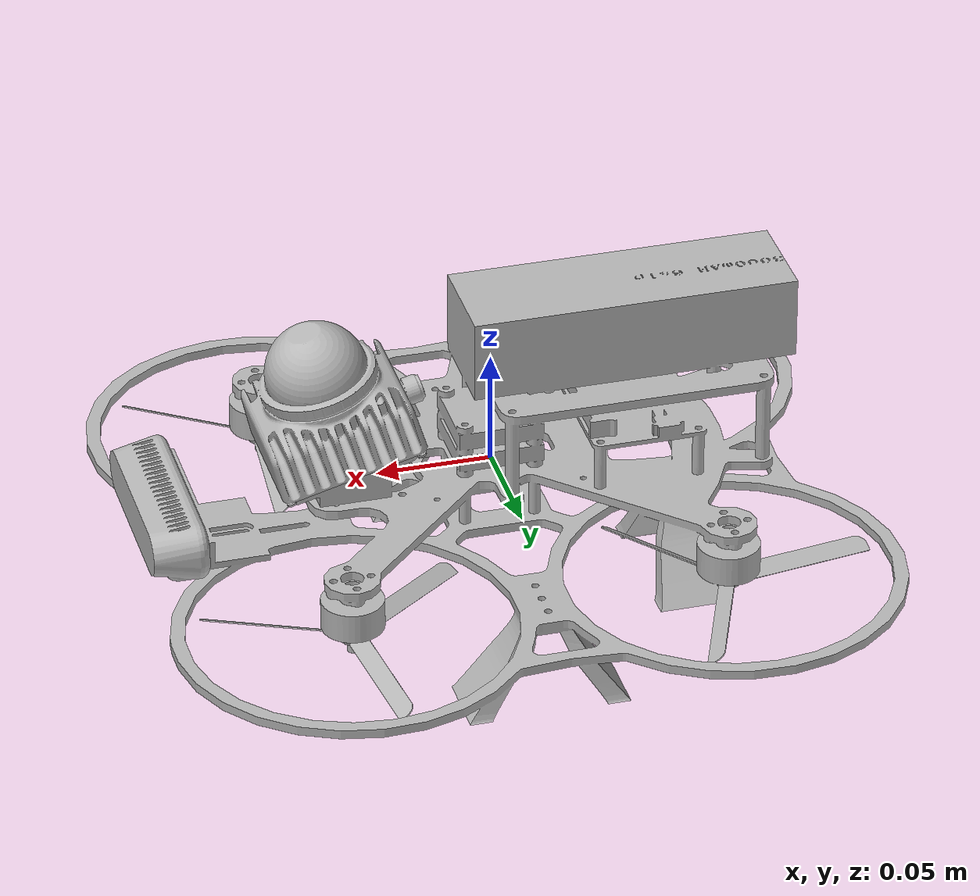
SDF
<sdf version='1.7'>
  <model name='uav'>
    <link name='base_link'>
      <inertial>
        <pose>0.00854 -4e-06 0.015696 0 -0 0</pose>
        <mass>0.961089</mass>
        <inertia>
          <ixx>0.0014967</ixx>
          <ixy>-2.95523e-07</ixy>
          <ixz>2.17071e-05</ixz>
          <iyy>0.00522903</iyy>
          <iyz>-4.47148e-08</iyz>
          <izz>0.00639738</izz>
        </inertia>
      </inertial>
      <collision name='base_link_collision'>
        <pose>0 0 0 0 -0 0</pose>
        <geometry>
          <mesh>
            <scale>1 1 1</scale>
            <uri>model://uav/meshes/base_link.STL</uri>
          </mesh>
        </geometry>
      </collision>
      <collision name='base_link_fixed_joint_lump__camera_link_collision_1'>
        <pose>0.15532 0.001716 -0.001374 0 1.5708 0</pose>
        <geometry>
          <mesh>
            <scale>1 1 1</scale>
            <uri>model://uav/meshes/camera_link.STL</uri>
          </mesh>
        </geometry>
      </collision>
      <collision name='base_link_fixed_joint_lump__lidar_link_collision_2'>
        <pose>0.080904 0 0.074681 0 0.2618 0</pose>
        <geometry>
          <mesh>
            <scale>1 1 1</scale>
            <uri>model://uav/meshes/lidar_link.STL</uri>
          </mesh>
        </geometry>
      </collision>
      <visual name='base_link_visual'>
        <pose>0 0 0 0 -0 0</pose>
        <geometry>
          <mesh>
            <scale>1 1 1</scale>
            <uri>model://uav/meshes/base_link.STL</uri>
          </mesh>
        </geometry>
      </visual>
      <visual name='base_link_fixed_joint_lump__camera_link_visual_1'>
        <pose>0.15532 0.001716 -0.001374 0 1.5708 0</pose>
        <geometry>
          <mesh>
            <scale>1 1 1</scale>
            <uri>model://uav/meshes/camera_link.STL</uri>
          </mesh>
        </geometry>
      </visual>
      <visual name='base_link_fixed_joint_lump__lidar_link_visual_2'>
        <pose>0.080904 0 0.074681 0 0.2618 0</pose>
        <geometry>
          <mesh>
            <scale>1 1 1</scale>
            <uri>model://uav/meshes/lidar_link.STL</uri>
          </mesh>
        </geometry>
      </visual>
    </link>
    <joint name='propeller_1' type='revolute'>
      <pose relative_to='base_link'>0.081317 0.081317 -0.0264 0 -0 0</pose>
      <parent>base_link</parent>
      <child>propeller_1_link</child>
      <axis>
        <xyz>0 0 -1</xyz>
        <limit>
          <lower>-1e+16</lower>
          <upper>1e+16</upper>
        </limit>
        <dynamics>
          <spring_reference>0</spring_reference>
          <spring_stiffness>0</spring_stiffness>
        </dynamics>
      </axis>
    </joint>
    <link name='propeller_1_link'>
      <pose relative_to='propeller_1'>0 0 0 0 -0 0</pose>
      <inertial>
        <pose>-0 -0 0.003491 0 -0 0</pose>
        <mass>0.0012983</mass>
        <inertia>
          <ixx>5.4247e-07</ixx>
          <ixy>-3.2114e-14</ixy>
          <ixz>8.3771e-14</ixz>
          <iyy>5.4246e-07</iyy>
          <iyz>5.8084e-15</iyz>
          <izz>1.0787e-06</izz>
        </inertia>
      </inertial>
      <collision name='propeller_1_link_collision'>
        <pose>0 0 0 0 -0 0</pose>
        <geometry>
          <mesh>
            <scale>1 1 1</scale>
            <uri>model://uav/meshes/propeller_1_link.STL</uri>
          </mesh>
        </geometry>
      </collision>
      <visual name='propeller_1_link_visual'>
        <pose>0 0 0 0 -0 0</pose>
        <geometry>
          <mesh>
            <scale>1 1 1</scale>
            <uri>model://uav/meshes/propeller_1_link.STL</uri>
          </mesh>
        </geometry>
      </visual>
    </link>
    <joint name='propeller_2' type='revolute'>
      <pose relative_to='base_link'>0.081317 -0.081317 -0.0264 0 -0 0</pose>
      <parent>base_link</parent>
      <child>propeller_2_link</child>
      <axis>
        <xyz>0 0 -1</xyz>
        <limit>
          <lower>-1e+16</lower>
          <upper>1e+16</upper>
        </limit>
        <dynamics>
          <spring_reference>0</spring_reference>
          <spring_stiffness>0</spring_stiffness>
        </dynamics>
      </axis>
    </joint>
    <link name='propeller_2_link'>
      <pose relative_to='propeller_2'>0 0 0 0 -0 0</pose>
      <inertial>
        <pose>-0 -0 0.003491 0 -0 0</pose>
        <mass>0.0012983</mass>
        <inertia>
          <ixx>5.4247e-07</ixx>
          <ixy>-1.5213e-13</ixy>
          <ixz>6.0754e-14</ixz>
          <iyy>5.4246e-07</iyy>
          <iyz>2.55e-14</iyz>
          <izz>1.0787e-06</izz>
        </inertia>
      </inertial>
      <collision name='propeller_2_link_collision'>
        <pose>0 0 0 0 -0 0</pose>
        <geometry>
          <mesh>
            <scale>1 1 1</scale>
            <uri>model://uav/meshes/propeller_2_link.STL</uri>
          </mesh>
        </geometry>
      </collision>
      <visual name='propeller_2_link_visual'>
        <pose>0 0 0 0 -0 0</pose>
        <geometry>
          <mesh>
            <scale>1 1 1</scale>
            <uri>model://uav/meshes/propeller_2_link.STL</uri>
          </mesh>
        </geometry>
      </visual>
    </link>
    <joint name='propeller_3' type='revolute'>
      <pose relative_to='base_link'>-0.081317 -0.081317 -0.0264 0 -0 0</pose>
      <parent>base_link</parent>
      <child>propeller_3_link</child>
      <axis>
        <xyz>0 0 -1</xyz>
        <limit>
          <lower>-1e+16</lower>
          <upper>1e+16</upper>
        </limit>
        <dynamics>
          <spring_reference>0</spring_reference>
          <spring_stiffness>0</spring_stiffness>
        </dynamics>
      </axis>
    </joint>
    <link name='propeller_3_link'>
      <pose relative_to='propeller_3'>0 0 0 0 -0 0</pose>
      <inertial>
        <pose>0 -0 0.003491 0 -0 0</pose>
        <mass>0.0012983</mass>
        <inertia>
          <ixx>5.4246e-07</ixx>
          <ixy>1.5689e-13</ixy>
          <ixz>4.6336e-14</ixz>
          <iyy>5.4246e-07</iyy>
          <iyz>-1.3257e-14</iyz>
          <izz>1.0787e-06</izz>
        </inertia>
      </inertial>
      <collision name='propeller_3_link_collision'>
        <pose>0 0 0 0 -0 0</pose>
        <geometry>
          <mesh>
            <scale>1 1 1</scale>
            <uri>model://uav/meshes/propeller_3_link.STL</uri>
          </mesh>
        </geometry>
      </collision>
      <visual name='propeller_3_link_visual'>
        <pose>0 0 0 0 -0 0</pose>
        <geometry>
          <mesh>
            <scale>1 1 1</scale>
            <uri>model://uav/meshes/propeller_3_link.STL</uri>
          </mesh>
        </geometry>
      </visual>
    </link>
    <joint name='propeller_4' type='revolute'>
      <pose relative_to='base_link'>-0.081317 0.081317 -0.0264 0 -0 0</pose>
      <parent>base_link</parent>
      <child>propeller_4_link</child>
      <axis>
        <xyz>0 0 -1</xyz>
        <limit>
          <lower>-1e+16</lower>
          <upper>1e+16</upper>
        </limit>
        <dynamics>
          <spring_reference>0</spring_reference>
          <spring_stiffness>0</spring_stiffness>
        </dynamics>
      </axis>
    </joint>
    <link name='propeller_4_link'>
      <pose relative_to='propeller_4'>0 0 0 0 -0 0</pose>
      <inertial>
        <pose>0 -0 0.003491 0 -0 0</pose>
        <mass>0.00129831</mass>
        <inertia>
          <ixx>5.42465e-07</ixx>
          <ixy>5.45914e-16</ixy>
          <ixz>-6.31179e-16</ixz>
          <iyy>5.42465e-07</iyy>
          <iyz>8.03848e-14</iyz>
          <izz>1.07868e-06</izz>
        </inertia>
      </inertial>
      <collision name='propeller_4_link_collision'>
        <pose>0 0 0 0 -0 0</pose>
        <geometry>
          <mesh>
            <scale>1 1 1</scale>
            <uri>model://uav/meshes/propeller_4_link.STL</uri>
          </mesh>
        </geometry>
      </collision>
      <visual name='propeller_4_link_visual'>
        <pose>0 0 0 0 -0 0</pose>
        <geometry>
          <mesh>
            <scale>1 1 1</scale>
            <uri>model://uav/meshes/propeller_4_link.STL</uri>
          </mesh>
        </geometry>
      </visual>
    </link>
    <frame name='camera' attached_to='base_link'>
      <pose>0.15532 0.001716 -0.001374 3.14159 1.57079 3.14159</pose>
    </frame>
    <frame name='camera_link' attached_to='camera'/>
    <frame name='lidar' attached_to='base_link'>
      <pose>0.080904 0 0.074681 0 0.2618 0</pose>
    </frame>
    <frame name='lidar_link' attached_to='lidar'/>
  </model>
</sdf>
